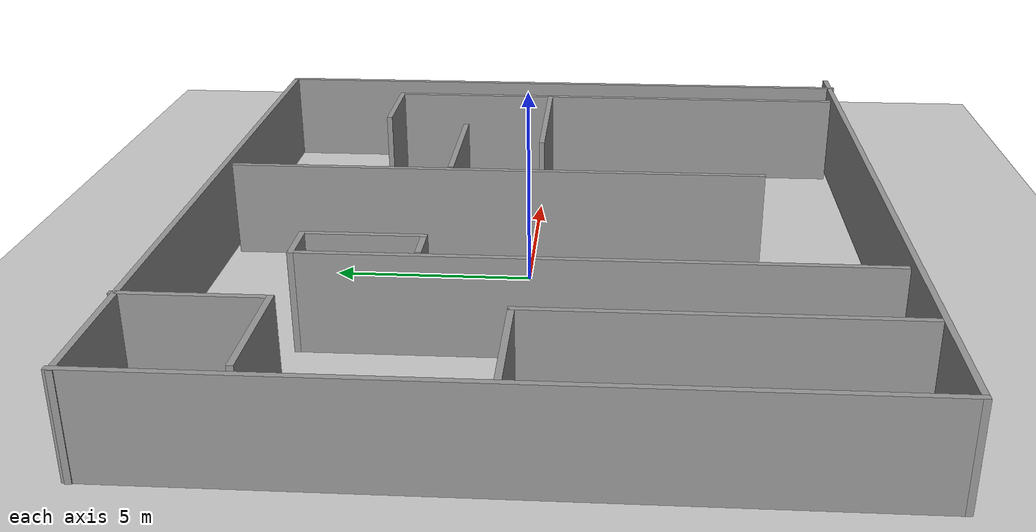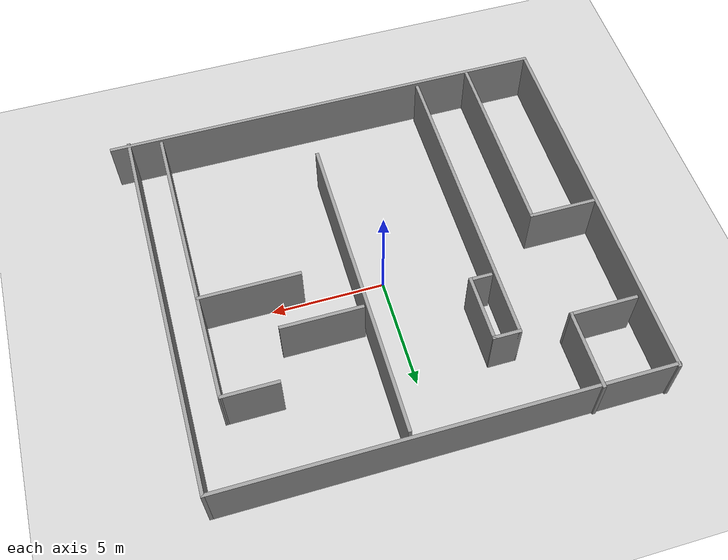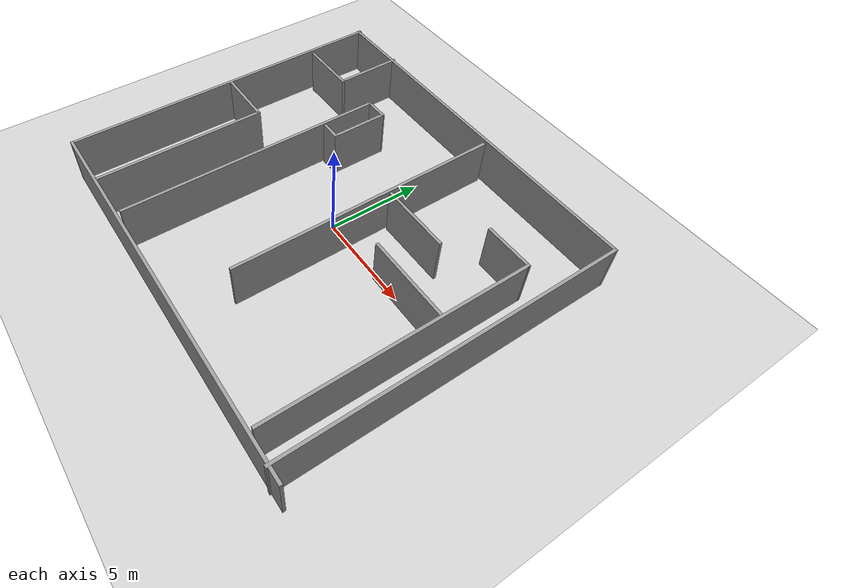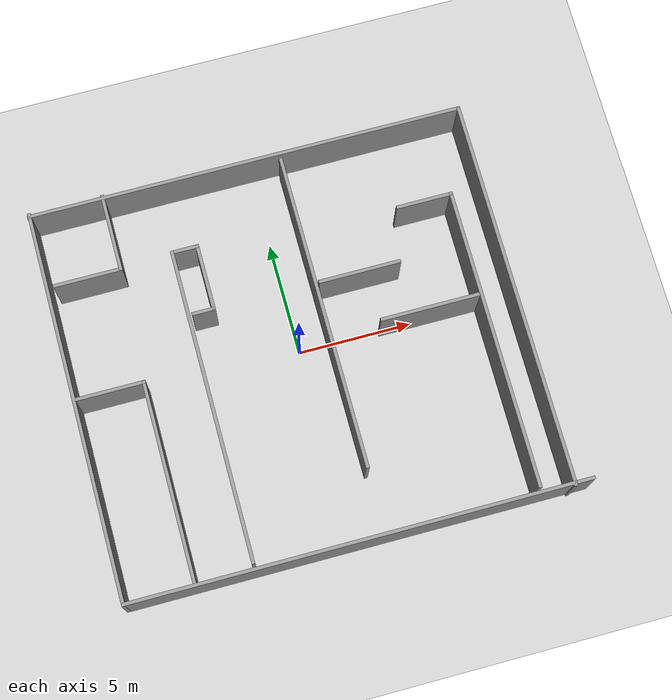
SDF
<sdf version="1.6">
 <world name="default">
  <light name="sun" type="directional">
   <pose>0 0 10 0 -0 0</pose>
   <diffuse>0.8 0.8 0.8 1</diffuse>
   <specular>0.1 0.1 0.1 1</specular>
   <attenuation>
    <range>1000</range>
    <constant>0.9</constant>
    <linear>0.01</linear>
    <quadratic>0.001</quadratic>
   </attenuation>
   <direction>-0.5 0.5 -1</direction>
  </light>
  <model name="ground_plane">
   <static>1</static>
   <link name="link">
    <collision name="collision">
     <geometry><plane><normal>0 0 1</normal><size>100 100</size></plane></geometry>
     <surface><friction><ode><mu>100</mu><mu2>50</mu2></ode></friction></surface>
    </collision>
    <visual name="visual">
     <cast_shadows>0</cast_shadows>
     <geometry><plane><normal>0 0 1</normal><size>100 100</size></plane></geometry>
     <material>
      <script><uri>file://media/materials/scripts/gazebo.material</uri><name>Gazebo/Grey</name></script>
     </material>
    </visual>
   </link>
  </model>
  <gravity>0 0 -9.8</gravity>
  <magnetic_field>6e-06 2.3e-05 -4.2e-05</magnetic_field>
  <atmosphere type="adiabatic"/>
  <physics name="default_physics" default="0" type="ode">
   <max_step_size>0.001</max_step_size>
   <real_time_factor>1</real_time_factor>
   <real_time_update_rate>1000</real_time_update_rate>
  </physics>
  <scene><ambient>0.4 0.4 0.4 1</ambient><background>0.7 0.7 0.7 1</background><shadows>1</shadows></scene>
  <spherical_coordinates>
   <surface_model>EARTH_WGS84</surface_model>
   <latitude_deg>0</latitude_deg>
   <longitude_deg>0</longitude_deg>
   <elevation>0</elevation>
   <heading_deg>0</heading_deg>
  </spherical_coordinates>
  <model name="map">
   <pose>0.192942 -0.32492 0 0 -0 0</pose>
   <link name="Wall_0">
    <collision name="Wall_0_Collision">
     <geometry><box><size>17.25 0.15 2.5</size></box></geometry>
     <pose>0 0 1.25 0 -0 0</pose>
    </collision>
    <visual name="Wall_0_Visual">
     <pose>0 0 1.25 0 -0 0</pose>
     <geometry><box><size>17.25 0.15 2.5</size></box></geometry>
     <material>
      <script><uri>file://media/materials/scripts/gazebo.material</uri><name>Gazebo/Grey</name></script>
      <ambient>1 1 1 1</ambient>
     </material>
    </visual>
    <pose>-9.9124 0.033767 0 0 0 -1.57079</pose>
   </link>
   <link name="Wall_1">
    <collision name="Wall_1_Collision">
     <geometry><box><size>20 0.15 2.5</size></box></geometry>
     <pose>0 0 1.25 0 -0 0</pose>
    </collision>
    <visual name="Wall_1_Visual">
     <pose>0 0 1.25 0 -0 0</pose>
     <geometry><box><size>20 0.15 2.5</size></box></geometry>
     <material>
      <script><uri>file://media/materials/scripts/gazebo.material</uri><name>Gazebo/Grey</name></script>
      <ambient>1 1 1 1</ambient>
     </material>
    </visual>
    <pose>0.012614 -8.51602 0 0 -0 0</pose>
   </link>
   <link name="Wall_10">
    <collision name="Wall_10_Collision">
     <geometry><box><size>3 0.15 2.5</size></box></geometry>
     <pose>0 0 1.25 0 -0 0</pose>
    </collision>
    <visual name="Wall_10_Visual">
     <pose>0 0 1.25 0 -0 0</pose>
     <geometry><box><size>3 0.15 2.5</size></box></geometry>
     <material>
      <script><uri>file://media/materials/scripts/gazebo.material</uri><name>Gazebo/Grey</name></script>
      <ambient>1 1 1 1</ambient>
     </material>
    </visual>
    <pose>-8.12727 5.23356 0 0 -0 3.14159</pose>
   </link>
   <link name="Wall_12">
    <collision name="Wall_12_Collision">
     <geometry><box><size>3 0.15 2.5</size></box></geometry>
     <pose>0 0 1.25 0 -0 0</pose>
    </collision>
    <visual name="Wall_12_Visual">
     <pose>0 0 1.25 0 -0 0</pose>
     <geometry><box><size>3 0.15 2.5</size></box></geometry>
     <material>
      <script><uri>file://media/materials/scripts/gazebo.material</uri><name>Gazebo/Grey</name></script>
      <ambient>1 1 1 1</ambient>
     </material>
    </visual>
    <pose>-8.34785 0.209253 0 0 -0 0</pose>
   </link>
   <link name="Wall_13">
    <collision name="Wall_13_Collision">
     <geometry><box><size>8.75 0.15 2.5</size></box></geometry>
     <pose>0 0 1.25 0 -0 0</pose>
    </collision>
    <visual name="Wall_13_Visual">
     <pose>0 0 1.25 0 -0 0</pose>
     <geometry><box><size>8.75 0.15 2.5</size></box></geometry>
     <material>
      <script><uri>file://media/materials/scripts/gazebo.material</uri><name>Gazebo/Grey</name></script>
      <ambient>1 1 1 1</ambient>
     </material>
    </visual>
    <pose>-6.92285 -4.09075 0 0 0 -1.5708</pose>
   </link>
   <link name="Wall_15">
    <collision name="Wall_15_Collision">
     <geometry><box><size>13.75 0.15 2.5</size></box></geometry>
     <pose>0 0 1.25 0 -0 0</pose>
    </collision>
    <visual name="Wall_15_Visual">
     <pose>0 0 1.25 0 -0 0</pose>
     <geometry><box><size>13.75 0.15 2.5</size></box></geometry>
     <material>
      <script><uri>file://media/materials/scripts/gazebo.material</uri><name>Gazebo/Grey</name></script>
      <ambient>1 1 1 1</ambient>
     </material>
    </visual>
    <pose>-4.4226 -1.42659 0 0 0 -1.5708</pose>
   </link>
   <link name="Wall_17">
    <collision name="Wall_17_Collision">
     <geometry><box><size>1.25 0.15 2.5</size></box></geometry>
     <pose>0 0 1.25 0 -0 0</pose>
    </collision>
    <visual name="Wall_17_Visual">
     <pose>0 0 1.25 0 -0 0</pose>
     <geometry><box><size>1.25 0.15 2.5</size></box></geometry>
     <material>
      <script><uri>file://media/materials/scripts/gazebo.material</uri><name>Gazebo/Grey</name></script>
      <ambient>1 1 1 1</ambient>
     </material>
    </visual>
    <pose>-3.8726 5.37341 0 0 -0 0</pose>
   </link>
   <link name="Wall_18">
    <collision name="Wall_18_Collision">
     <geometry><box><size>3 0.15 2.5</size></box></geometry>
     <pose>0 0 1.25 0 -0 0</pose>
    </collision>
    <visual name="Wall_18_Visual">
     <pose>0 0 1.25 0 -0 0</pose>
     <geometry><box><size>3 0.15 2.5</size></box></geometry>
     <material>
      <script><uri>file://media/materials/scripts/gazebo.material</uri><name>Gazebo/Grey</name></script>
      <ambient>1 1 1 1</ambient>
     </material>
    </visual>
    <pose>-3.32249 3.94819 0 0 0 -1.57072</pose>
   </link>
   <link name="Wall_19">
    <collision name="Wall_19_Collision">
     <geometry><box><size>1.026 0.15 2.5</size></box></geometry>
     <pose>0 0 1.25 0 -0 0</pose>
    </collision>
    <visual name="Wall_19_Visual">
     <pose>0 0 1.25 0 -0 0</pose>
     <geometry><box><size>1.026 0.15 2.5</size></box></geometry>
     <material>
      <script><uri>file://media/materials/scripts/gazebo.material</uri><name>Gazebo/Grey</name></script>
      <ambient>1 1 1 1</ambient>
     </material>
    </visual>
    <pose>-3.76039 2.52298 0 0 -0 3.14159</pose>
   </link>
   <link name="Wall_22">
    <collision name="Wall_22_Collision">
     <geometry><box><size>3.59997 0.15 2.5</size></box></geometry>
     <pose>0 0 1.25 0 -0 0</pose>
    </collision>
    <visual name="Wall_22_Visual">
     <pose>0 0 1.25 0 -0 0</pose>
     <geometry><box><size>3.59997 0.15 2.5</size></box></geometry>
     <material>
      <script><uri>file://media/materials/scripts/gazebo.material</uri><name>Gazebo/Grey</name></script>
      <ambient>1 1 1 1</ambient>
     </material>
    </visual>
    <pose>3.05161 2.49998 0 0 -0 0</pose>
   </link>
   <link name="Wall_24">
    <collision name="Wall_24_Collision">
     <geometry><box><size>13.25 0.15 2.5</size></box></geometry>
     <pose>0 0 1.25 0 -0 0</pose>
    </collision>
    <visual name="Wall_24_Visual">
     <pose>0 0 1.25 0 -0 0</pose>
     <geometry><box><size>13.25 0.15 2.5</size></box></geometry>
     <material>
      <script><uri>file://media/materials/scripts/gazebo.material</uri><name>Gazebo/Grey</name></script>
      <ambient>1 1 1 1</ambient>
     </material>
    </visual>
    <pose>7.73861 -1.71902 0 0 -0 1.56881</pose>
   </link>
   <link name="Wall_31">
    <collision name="Wall_31_Collision">
     <geometry><box><size>4.45 0.15 2.5</size></box></geometry>
     <pose>0 0 1.25 0 -0 0</pose>
    </collision>
    <visual name="Wall_31_Visual">
     <pose>0 0 1.25 0 -0 0</pose>
     <geometry><box><size>4.45 0.15 2.5</size></box></geometry>
     <material>
      <script><uri>file://media/materials/scripts/gazebo.material</uri><name>Gazebo/Grey</name></script>
      <ambient>1 1 1 1</ambient>
     </material>
    </visual>
    <pose>5.55161 0.221976 0 0 -0 3.14159</pose>
   </link>
   <link name="Wall_33">
    <collision name="Wall_33_Collision">
     <geometry><box><size>2.5 0.15 2.5</size></box></geometry>
     <pose>0 0 1.25 0 -0 0</pose>
    </collision>
    <visual name="Wall_33_Visual">
     <pose>0 0 1.25 0 -0 0</pose>
     <geometry><box><size>2.5 0.15 2.5</size></box></geometry>
     <material>
      <script><uri>file://media/materials/scripts/gazebo.material</uri><name>Gazebo/Grey</name></script>
      <ambient>1 1 1 1</ambient>
     </material>
    </visual>
    <pose>6.57661 4.83098 0 0 -0 3.14159</pose>
   </link>
   <link name="Wall_4">
    <collision name="Wall_4_Collision">
     <geometry><box><size>17.25 0.15 2.5</size></box></geometry>
     <pose>0 0 1.25 0 -0 0</pose>
    </collision>
    <visual name="Wall_4_Visual">
     <pose>0 0 1.25 0 -0 0</pose>
     <geometry><box><size>17.25 0.15 2.5</size></box></geometry>
     <material>
      <script><uri>file://media/materials/scripts/gazebo.material</uri><name>Gazebo/Grey</name></script>
      <ambient>1 1 1 1</ambient>
     </material>
    </visual>
    <pose>9.16239 -0.033766 0 0 -0 1.5708</pose>
   </link>
   <link name="Wall_5">
    <collision name="Wall_5_Collision">
     <geometry><box><size>19.25 0.15 2.5</size></box></geometry>
     <pose>0 0 1.25 0 -0 0</pose>
    </collision>
    <visual name="Wall_5_Visual">
     <pose>0 0 1.25 0 -0 0</pose>
     <geometry><box><size>19.25 0.15 2.5</size></box></geometry>
     <material>
      <script><uri>file://media/materials/scripts/gazebo.material</uri><name>Gazebo/Grey</name></script>
      <ambient>1 1 1 1</ambient>
     </material>
    </visual>
    <pose>-0.387614 8.51623 0 0 -0 3.14159</pose>
   </link>
   <link name="Wall_7">
    <collision name="Wall_7_Collision">
     <geometry><box><size>14 0.15 2.5</size></box></geometry>
     <pose>0 0 1.25 0 -0 0</pose>
    </collision>
    <visual name="Wall_7_Visual">
     <pose>0 0 1.25 0 -0 0</pose>
     <geometry><box><size>14 0.15 2.5</size></box></geometry>
     <material>
      <script><uri>file://media/materials/scripts/gazebo.material</uri><name>Gazebo/Grey</name></script>
      <ambient>1 1 1 1</ambient>
     </material>
    </visual>
    <pose>1.11375 1.28637 0 0 0 -1.5708</pose>
   </link>
   <link name="Wall_9">
    <collision name="Wall_9_Collision">
     <geometry><box><size>3.5 0.15 2.5</size></box></geometry>
     <pose>0 0 1.25 0 -0 0</pose>
    </collision>
    <visual name="Wall_9_Visual">
     <pose>0 0 1.25 0 -0 0</pose>
     <geometry><box><size>3.5 0.15 2.5</size></box></geometry>
     <material>
      <script><uri>file://media/materials/scripts/gazebo.material</uri><name>Gazebo/Grey</name></script>
      <ambient>1 1 1 1</ambient>
     </material>
    </visual>
    <pose>-6.70227 6.90856 0 0 0 -1.5708</pose>
   </link>
   <static>1</static>
  </model>
 </world>
</sdf>
